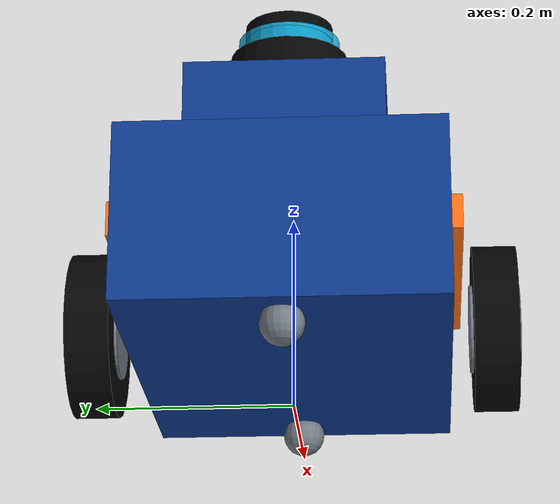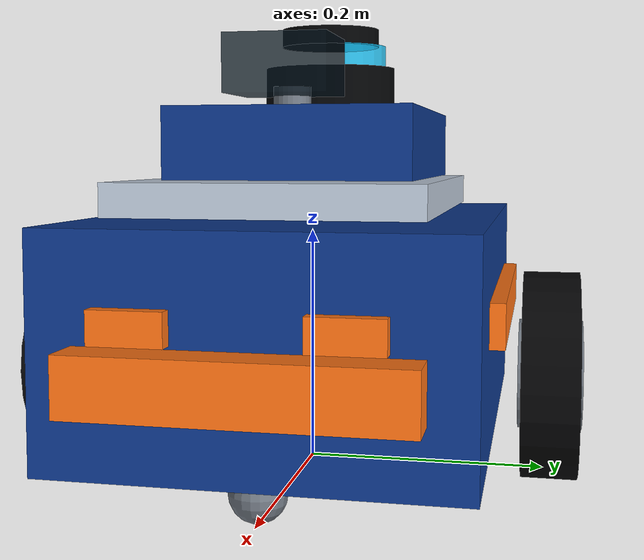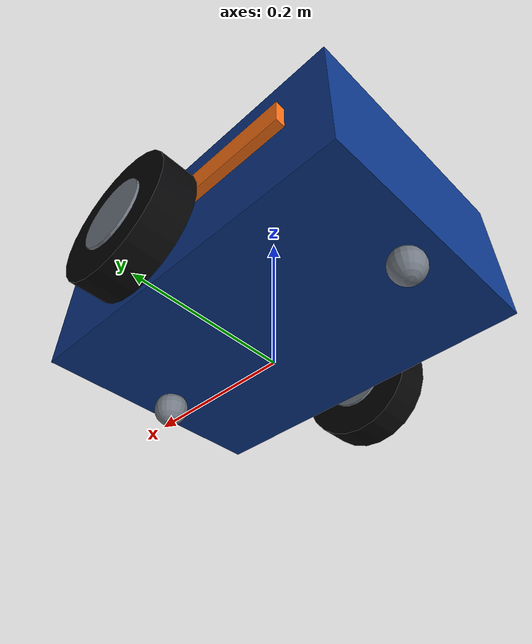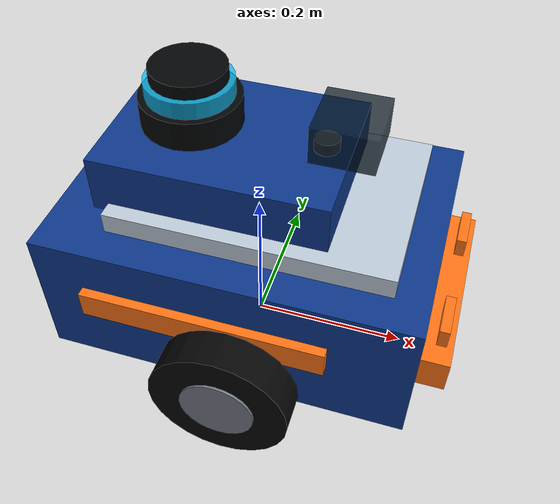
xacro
<?xml version="1.0"?>
<robot name="diffbot" xmlns:xacro="http://www.ros.org/wiki/xacro">
  <xacro:property name="base_length" value="0.46"/>
  <xacro:property name="base_width" value="0.32"/>
  <xacro:property name="base_height" value="0.18"/>
  <xacro:property name="wheel_radius" value="0.085"/>
  <xacro:property name="wheel_width" value="0.045"/>
  <xacro:property name="wheel_y" value="0.205"/>
  <xacro:property name="wheel_x" value="0.02"/>
  <xacro:property name="wheel_z" value="0.085"/>
  <xacro:property name="base_origin_z" value="${base_height / 2.0 + 0.035}"/>
  <xacro:property name="support_ball_radius" value="0.022"/>
  <xacro:property name="support_ball_z" value="${support_ball_radius - base_origin_z + 0.001}"/>
  <material name="body_blue"><color rgba="0.05 0.22 0.55 1"/></material>
  <material name="top_silver"><color rgba="0.75 0.8 0.86 1"/></material>
  <material name="wheel_black"><color rgba="0.02 0.02 0.025 1"/></material>
  <material name="rim_gray"><color rgba="0.45 0.48 0.52 1"/></material>
  <material name="accent_orange"><color rgba="1.0 0.45 0.08 1"/></material>
  <material name="sensor_glass"><color rgba="0.02 0.08 0.12 0.75"/></material>
  <material name="lidar_dark"><color rgba="0.01 0.015 0.02 1"/></material>
  <material name="lidar_blue"><color rgba="0.1 0.75 0.95 0.85"/></material>

  <link name="base_footprint"/>

  <joint name="base_footprint_joint" type="fixed">
    <parent link="base_footprint"/>
    <child link="base_link"/>
    <origin xyz="0 0 ${base_origin_z}" rpy="0 0 0"/>
  </joint>

  <link name="base_link">
    <inertial>
      <origin xyz="0 0 0"/>
      <mass value="4.0"/>
      <inertia ixx="0.045" ixy="0" ixz="0" iyy="0.075" iyz="0" izz="0.095"/>
    </inertial>
    <collision name="base_collision">
      <geometry><box size="${base_length} ${base_width} ${base_height}"/></geometry>
    </collision>
    <visual name="main_body">
      <geometry><box size="${base_length} ${base_width} ${base_height}"/></geometry>
      <material name="body_blue"/>
    </visual>
    <visual name="top_plate">
      <origin xyz="0.02 0 ${base_height / 2.0 + 0.018}"/>
      <geometry><box size="0.34 0.24 0.026"/></geometry>
      <material name="top_silver"/>
    </visual>
    <visual name="upper_shell">
      <origin xyz="-0.03 0 ${base_height / 2.0 + 0.055}"/>
      <geometry><box size="0.28 0.20 0.07"/></geometry>
      <material name="body_blue"/>
    </visual>
    <visual name="orange_side_left">
      <origin xyz="-0.02 ${base_width / 2.0 + 0.006} 0.015"/>
      <geometry><box size="0.30 0.012 0.035"/></geometry>
      <material name="accent_orange"/>
    </visual>
    <visual name="orange_side_right">
      <origin xyz="-0.02 ${-base_width / 2.0 - 0.006} 0.015"/>
      <geometry><box size="0.30 0.012 0.035"/></geometry>
      <material name="accent_orange"/>
    </visual>
    <visual name="front_bumper">
      <origin xyz="${base_length / 2.0 + 0.018} 0 -0.015"/>
      <geometry><box size="0.035 0.25 0.045"/></geometry>
      <material name="accent_orange"/>
    </visual>
    <visual name="left_light">
      <origin xyz="${base_length / 2.0 + 0.021} 0.075 0.025"/>
      <geometry><box size="0.012 0.055 0.025"/></geometry>
      <material name="accent_orange"/>
    </visual>
    <visual name="right_light">
      <origin xyz="${base_length / 2.0 + 0.021} -0.075 0.025"/>
      <geometry><box size="0.012 0.055 0.025"/></geometry>
      <material name="accent_orange"/>
    </visual>
  </link>

  <link name="left_wheel_link">
    <inertial>
      <mass value="0.45"/>
      <inertia ixx="0.0012" ixy="0" ixz="0" iyy="0.0012" iyz="0" izz="0.0020"/>
    </inertial>
    <collision>
      <origin rpy="${pi / 2.0} 0 0"/>
      <geometry><cylinder radius="${wheel_radius}" length="${wheel_width}"/></geometry>
    </collision>
    <visual name="tire">
      <origin rpy="${pi / 2.0} 0 0"/>
      <geometry><cylinder radius="${wheel_radius}" length="${wheel_width}"/></geometry>
      <material name="wheel_black"/>
    </visual>
    <visual name="rim">
      <origin rpy="${pi / 2.0} 0 0"/>
      <geometry><cylinder radius="0.045" length="${wheel_width + 0.006}"/></geometry>
      <material name="rim_gray"/>
    </visual>
  </link>

  <link name="right_wheel_link">
    <inertial>
      <mass value="0.45"/>
      <inertia ixx="0.0012" ixy="0" ixz="0" iyy="0.0012" iyz="0" izz="0.0020"/>
    </inertial>
    <collision>
      <origin rpy="${pi / 2.0} 0 0"/>
      <geometry><cylinder radius="${wheel_radius}" length="${wheel_width}"/></geometry>
    </collision>
    <visual name="tire">
      <origin rpy="${pi / 2.0} 0 0"/>
      <geometry><cylinder radius="${wheel_radius}" length="${wheel_width}"/></geometry>
      <material name="wheel_black"/>
    </visual>
    <visual name="rim">
      <origin rpy="${pi / 2.0} 0 0"/>
      <geometry><cylinder radius="0.045" length="${wheel_width + 0.006}"/></geometry>
      <material name="rim_gray"/>
    </visual>
  </link>

  <joint name="left_wheel_joint" type="continuous">
    <parent link="base_link"/>
    <child link="left_wheel_link"/>
    <origin xyz="${wheel_x} ${wheel_y} ${-base_height / 2.0 + wheel_z - 0.035}" rpy="0 0 0"/>
    <axis xyz="0 1 0"/>
  </joint>

  <joint name="right_wheel_joint" type="continuous">
    <parent link="base_link"/>
    <child link="right_wheel_link"/>
    <origin xyz="${wheel_x} ${-wheel_y} ${-base_height / 2.0 + wheel_z - 0.035}" rpy="0 0 0"/>
    <axis xyz="0 1 0"/>
  </joint>

  <link name="front_visual_support_ball_link">
    <collision>
      <geometry><sphere radius="${support_ball_radius}"/></geometry>
      <surface>
        <friction>
          <ode>
            <mu>0.000001</mu>
            <mu2>0.000001</mu2>
            <slip1>1.0</slip1>
            <slip2>1.0</slip2>
          </ode>
        </friction>
        <contact>
          <ode>
            <kp>60000</kp>
            <kd>0.3</kd>
            <max_vel>0.05</max_vel>
            <min_depth>0.0002</min_depth>
          </ode>
        </contact>
      </surface>
    </collision>
    <visual>
      <geometry><sphere radius="${support_ball_radius}"/></geometry>
      <material name="rim_gray"/>
    </visual>
  </link>

  <joint name="front_visual_support_ball_joint" type="fixed">
    <parent link="base_link"/>
    <child link="front_visual_support_ball_link"/>
    <origin xyz="0.19 0 ${support_ball_z}" rpy="0 0 0"/>
  </joint>

  <link name="rear_visual_support_ball_link">
    <collision>
      <geometry><sphere radius="${support_ball_radius}"/></geometry>
      <surface>
        <friction>
          <ode>
            <mu>0.000001</mu>
            <mu2>0.000001</mu2>
            <slip1>1.0</slip1>
            <slip2>1.0</slip2>
          </ode>
        </friction>
        <contact>
          <ode>
            <kp>60000</kp>
            <kd>0.3</kd>
            <max_vel>0.05</max_vel>
            <min_depth>0.0002</min_depth>
          </ode>
        </contact>
      </surface>
    </collision>
    <visual>
      <geometry><sphere radius="${support_ball_radius}"/></geometry>
      <material name="rim_gray"/>
    </visual>
  </link>

  <joint name="rear_visual_support_ball_joint" type="fixed">
    <parent link="base_link"/>
    <child link="rear_visual_support_ball_link"/>
    <origin xyz="-0.19 0 ${support_ball_z}" rpy="0 0 0"/>
  </joint>

  <link name="sensor_mast_link">
    <collision>
      <origin xyz="0 0 0.045"/>
      <geometry><cylinder radius="0.015" length="0.09"/></geometry>
    </collision>
    <visual name="mast">
      <origin xyz="0 0 0.045"/>
      <geometry><cylinder radius="0.015" length="0.09"/></geometry>
      <material name="rim_gray"/>
    </visual>
    <visual name="sensor_head">
      <origin xyz="0.025 0 0.105"/>
      <geometry><box size="0.075 0.08 0.045"/></geometry>
      <material name="sensor_glass"/>
    </visual>
  </link>

  <joint name="sensor_mast_joint" type="fixed">
    <parent link="base_link"/>
    <child link="sensor_mast_link"/>
    <origin xyz="0.08 0 ${base_height / 2.0 + 0.015}" rpy="0 0 0"/>
  </joint>

  <link name="lidar_link">
    <inertial>
      <mass value="0.18"/>
      <inertia ixx="0.00025" ixy="0" ixz="0" iyy="0.00025" iyz="0" izz="0.00035"/>
    </inertial>
    <collision>
      <origin xyz="0 0 0.025"/>
      <geometry><cylinder radius="0.055" length="0.05"/></geometry>
    </collision>
    <visual name="lidar_base">
      <origin xyz="0 0 0.018"/>
      <geometry><cylinder radius="0.06" length="0.036"/></geometry>
      <material name="lidar_dark"/>
    </visual>
    <visual name="lidar_scan_band">
      <origin xyz="0 0 0.045"/>
      <geometry><cylinder radius="0.052" length="0.022"/></geometry>
      <material name="lidar_blue"/>
    </visual>
    <visual name="lidar_cap">
      <origin xyz="0 0 0.064"/>
      <geometry><cylinder radius="0.045" length="0.016"/></geometry>
      <material name="lidar_dark"/>
    </visual>
  </link>

  <joint name="lidar_joint" type="fixed">
    <parent link="base_link"/>
    <child link="lidar_link"/>
    <origin xyz="-0.08 0 ${base_height / 2.0 + 0.095}" rpy="0 0 0"/>
  </joint>

  <gazebo reference="base_link">
    <material>Gazebo/Blue</material>
  </gazebo>
  <gazebo reference="left_wheel_link">
    <material>Gazebo/Black</material>
    <mu1>2.0</mu1>
    <mu2>2.0</mu2>
    <kp>1000000</kp>
    <kd>1</kd>
  </gazebo>
  <gazebo reference="right_wheel_link">
    <material>Gazebo/Black</material>
    <mu1>2.0</mu1>
    <mu2>2.0</mu2>
    <kp>1000000</kp>
    <kd>1</kd>
  </gazebo>

  <gazebo>
    <plugin name="diff_drive_controller" filename="libgazebo_ros_diff_drive.so">
      <ros>
        <namespace>/</namespace>
        <remapping>cmd_vel:=cmd_vel</remapping>
        <remapping>odom:=odom</remapping>
      </ros>
      <update_rate>50</update_rate>
      <left_joint>left_wheel_joint</left_joint>
      <right_joint>right_wheel_joint</right_joint>
      <wheel_separation>${2.0 * wheel_y}</wheel_separation>
      <wheel_diameter>${2.0 * wheel_radius}</wheel_diameter>
      <max_wheel_torque>80</max_wheel_torque>
      <max_wheel_acceleration>8.0</max_wheel_acceleration>
      <command_topic>cmd_vel</command_topic>
      <odometry_topic>odom</odometry_topic>
      <odometry_frame>odom</odometry_frame>
      <robot_base_frame>base_footprint</robot_base_frame>
      <publish_odom>true</publish_odom>
      <publish_odom_tf>true</publish_odom_tf>
      <publish_wheel_tf>true</publish_wheel_tf>
    </plugin>
  </gazebo>
</robot>
